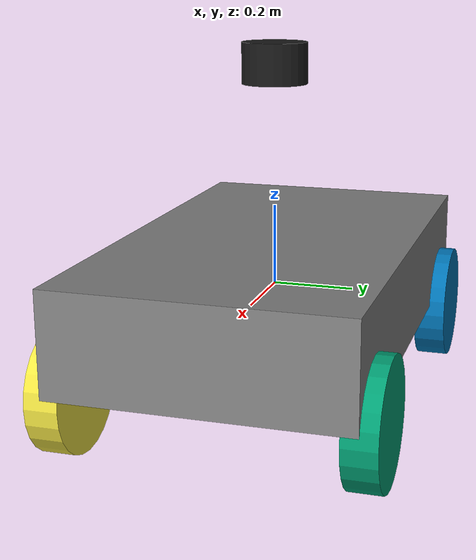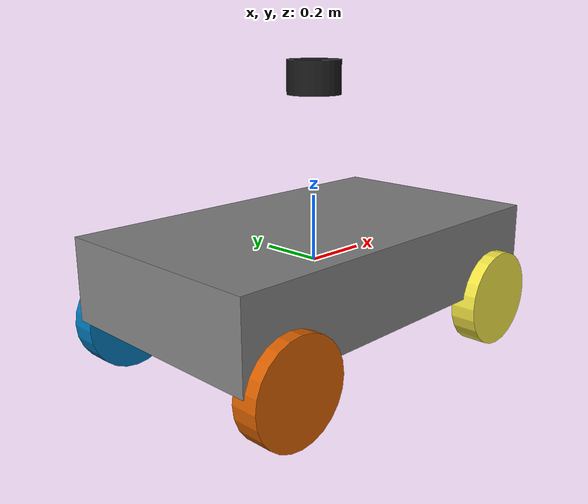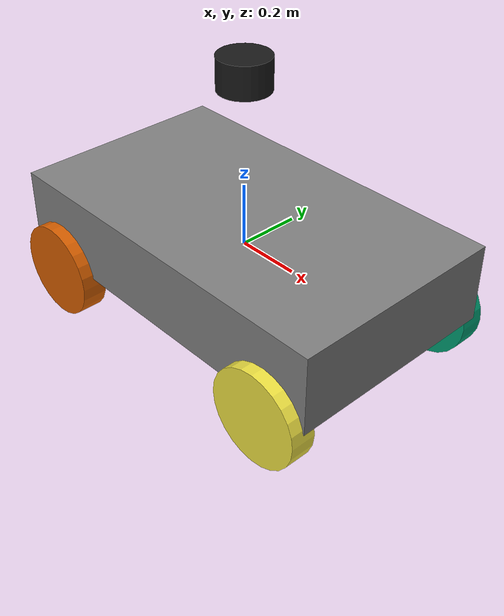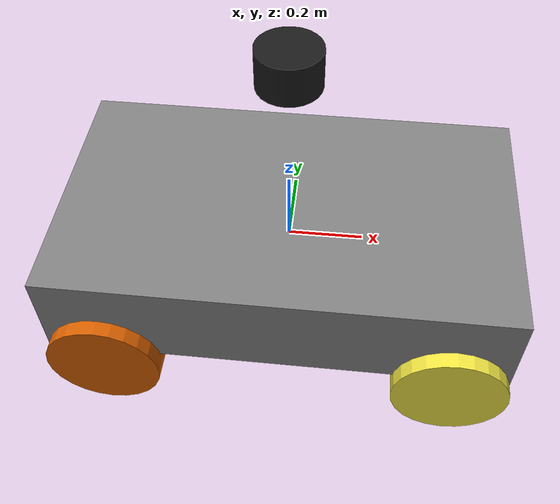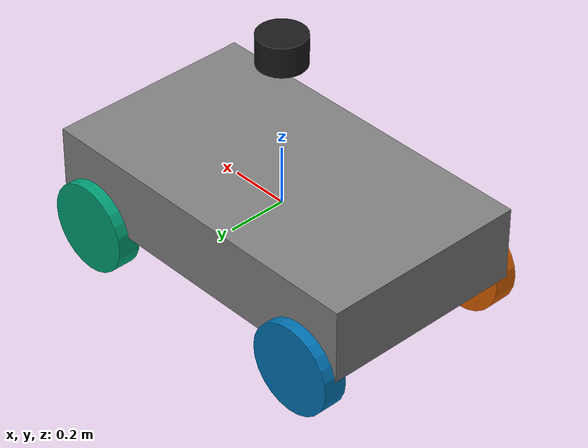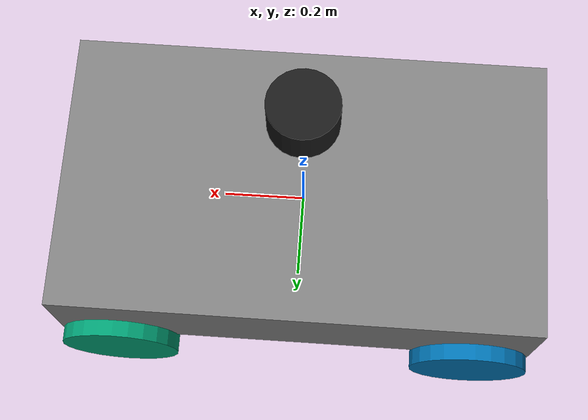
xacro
<?xml version="1.0"?>

<robot xmlns:xacro="http://www.ros.org/wiki/xacro"
       name="my_vehicle">

    <xacro:include filename="$(find my_vehicle_description)/urdf/chassis.xacro"/>
    <xacro:include filename="$(find my_vehicle_description)/urdf/wheels.xacro"/>
    <xacro:include filename="$(find my_vehicle_description)/urdf/sensors.xacro"/>
    <xacro:include filename="$(find my_vehicle_description)/urdf/gazebo.xacro"/>

</robot>

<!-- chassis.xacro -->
<robot xmlns:xacro="http://www.ros.org/wiki/xacro">

<link name="base_link"/>

<link name="chassis_link">

    <visual>
        <geometry>
            <box size="1.2 0.7 0.25"/>
        </geometry>

        <material name="gray">
            <color rgba="0.5 0.5 0.5 1"/>
        </material>

    </visual>

    <collision>
        <geometry>
            <box size="1.2 0.7 0.25"/>
        </geometry>
    </collision>

    <inertial>

        <origin xyz="0 0 0"/>

        <mass value="30"/>

        <inertia
            ixx="2.0"
            iyy="2.0"
            izz="2.0"
            ixy="0"
            ixz="0"
            iyz="0"/>

    </inertial>

</link>

<joint name="base_joint"
       type="fixed">

    <parent link="base_link"/>
    <child link="chassis_link"/>

</joint>

</robot>

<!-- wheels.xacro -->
<robot xmlns:xacro="http://www.ros.org/wiki/xacro">

  <!-- Front Left Wheel -->
  <link name="front_left_wheel_link">
    <visual>
      <geometry>
        <cylinder radius="0.15" length="0.08"/>
      </geometry>
      <origin rpy="1.5708 0 0"/>
    </visual>
  </link>

  <!-- Front Right Wheel -->
  <link name="front_right_wheel_link">
    <visual>
      <geometry>
        <cylinder radius="0.15" length="0.08"/>
      </geometry>
      <origin rpy="1.5708 0 0"/>
    </visual>
  </link>

  <!-- Rear Left Wheel -->
  <link name="rear_left_wheel_link">
    <visual>
      <geometry>
        <cylinder radius="0.15" length="0.08"/>
      </geometry>
      <origin rpy="1.5708 0 0"/>
    </visual>
  </link>

  <!-- Rear Right Wheel -->
  <link name="rear_right_wheel_link">
    <visual>
      <geometry>
        <cylinder radius="0.15" length="0.08"/>
      </geometry>
      <origin rpy="1.5708 0 0"/>
    </visual>
  </link>

  <!-- Front Left Steering -->
  <joint name="front_left_steering_joint" type="revolute">
    <parent link="chassis_link"/>
    <child link="front_left_wheel_link"/>
    <origin xyz="0.45 0.35 -0.15"/>
    <axis xyz="0 0 1"/>
    <limit lower="-0.6" upper="0.6" effort="20" velocity="1.5"/>
  </joint>

  <!-- Front Right Steering -->
  <joint name="front_right_steering_joint" type="revolute">
    <parent link="chassis_link"/>
    <child link="front_right_wheel_link"/>
    <origin xyz="0.45 -0.35 -0.15"/>
    <axis xyz="0 0 1"/>
    <limit lower="-0.6" upper="0.6" effort="20" velocity="1.5"/>
  </joint>

  <!-- Rear Left Drive -->
  <joint name="rear_left_wheel_joint" type="continuous">
    <parent link="chassis_link"/>
    <child link="rear_left_wheel_link"/>
    <origin xyz="-0.45 0.35 -0.15"/>
    <axis xyz="0 1 0"/>
  </joint>

  <!-- Rear Right Drive -->
  <joint name="rear_right_wheel_joint" type="continuous">
    <parent link="chassis_link"/>
    <child link="rear_right_wheel_link"/>
    <origin xyz="-0.45 -0.35 -0.15"/>
    <axis xyz="0 1 0"/>
  </joint>

</robot>

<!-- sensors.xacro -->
<robot xmlns:xacro="http://www.ros.org/wiki/xacro">

  <link name="ouster_link">
    <visual>
      <geometry>
        <cylinder radius="0.08" length="0.10"/>
      </geometry>
      <material name="black">
        <color rgba="0.1 0.1 0.1 1"/>
      </material>
    </visual>
  </link>

  <joint name="ouster_joint" type="fixed">
    <parent link="chassis_link"/>
    <child link="ouster_link"/>
    <origin xyz="0 0 0.55"/>
  </joint>

  <link name="imu_link"/>

  <joint name="imu_joint" type="fixed">
    <parent link="chassis_link"/>
    <child link="imu_link"/>
    <origin xyz="0 0 0.20"/>
  </joint>

</robot>
